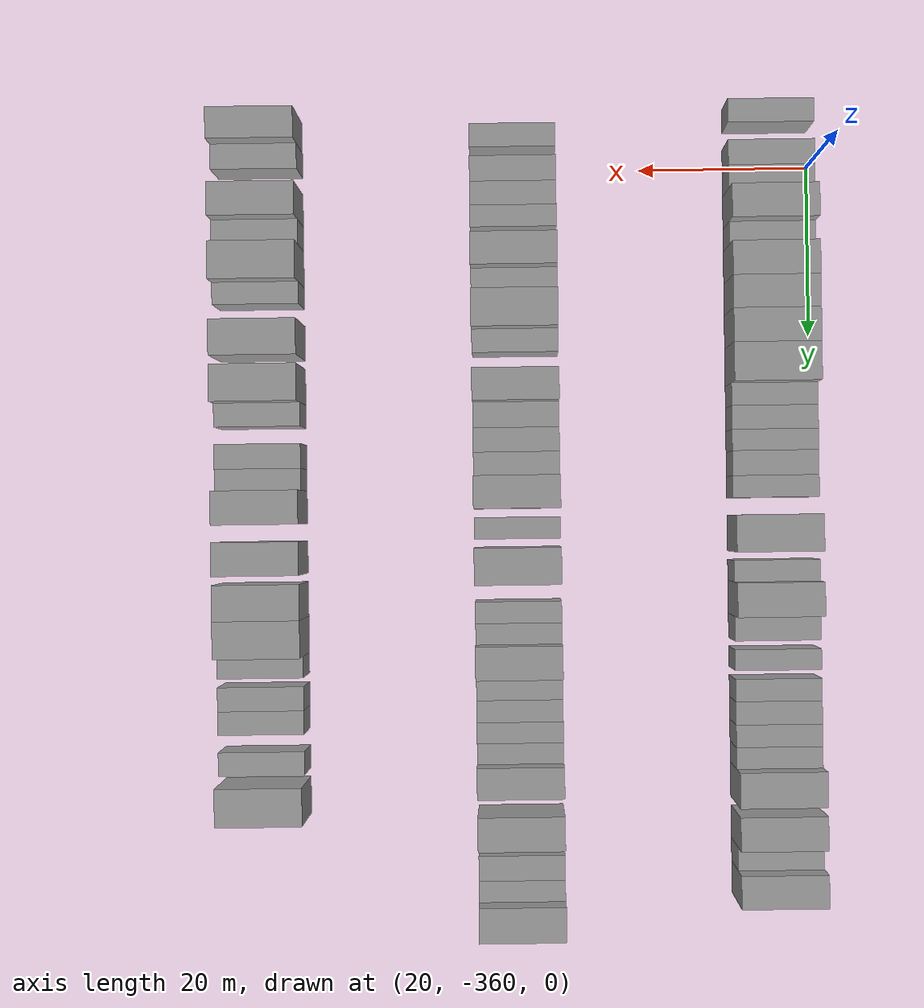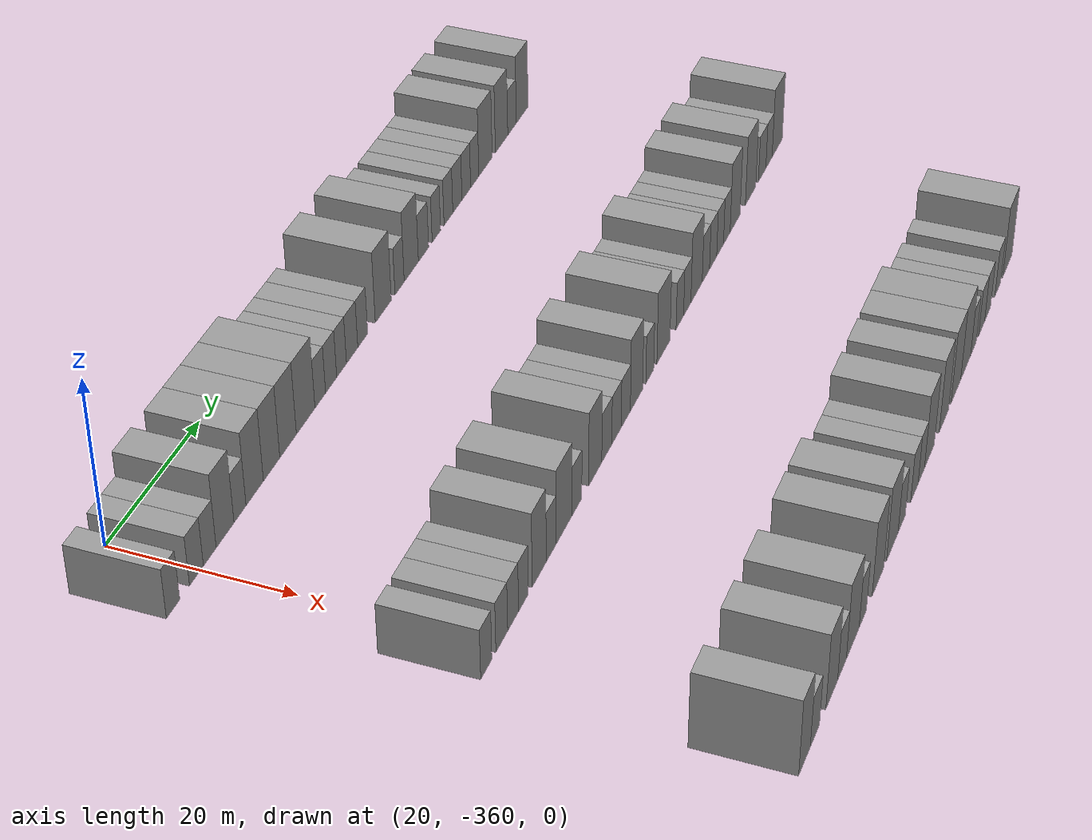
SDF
<sdf version="1.6">
 <world name="default">
  <model name="building_28">
   <static>1</static>
   <pose>25.0000 -365.6581 0 0.000000 0.000000 0.000000</pose>
   <link name="link">
    <pose>0 0 3.00 0 0 0</pose>
    <collision name="collision"><geometry><box><size>10.0000 2.7323 6.0000</size></box></geometry></collision>
    <visual name="visual">
     <cast_shadows>0</cast_shadows>
     <geometry><box><size>10.0000 2.7323 6.0000</size></box></geometry>
     <material>
      <script>
       <uri>model://grey_wall/materials/scripts</uri>
       <uri>model://grey_wall/materials/textures</uri>
       <name>vrc/grey_wall</name>
      </script>
     </material>
    </visual>
   </link>
  </model>
  <model name="building_29">
   <static>1</static>
   <pose>25.0000 -360.8342 0 0.000000 0.000000 0.000000</pose>
   <link name="link">
    <pose>0 0 3.00 0 0 0</pose>
    <collision name="collision"><geometry><box><size>10.0000 2.9154 6.0000</size></box></geometry></collision>
    <visual name="visual">
     <cast_shadows>0</cast_shadows>
     <geometry><box><size>10.0000 2.9154 6.0000</size></box></geometry>
     <material>
      <script>
       <uri>model://grey_wall/materials/scripts</uri>
       <uri>model://grey_wall/materials/textures</uri>
       <name>vrc/grey_wall</name>
      </script>
     </material>
    </visual>
   </link>
  </model>
  <model name="building_30">
   <static>1</static>
   <pose>25.0000 -358.0211 0 0.000000 0.000000 0.000000</pose>
   <link name="link">
    <pose>0 0 3.00 0 0 0</pose>
    <collision name="collision"><geometry><box><size>10.0000 2.7110 6.0000</size></box></geometry></collision>
    <visual name="visual">
     <cast_shadows>0</cast_shadows>
     <geometry><box><size>10.0000 2.7110 6.0000</size></box></geometry>
     <material>
      <script>
       <uri>model://grey_wall/materials/scripts</uri>
       <uri>model://grey_wall/materials/textures</uri>
       <name>vrc/grey_wall</name>
      </script>
     </material>
    </visual>
   </link>
  </model>
  <model name="building_31">
   <static>1</static>
   <pose>25.0000 -354.7402 0 0.000000 0.000000 0.000000</pose>
   <link name="link">
    <pose>0 0 4.50 0 0 0</pose>
    <collision name="collision"><geometry><box><size>10.0000 3.8507 9.0000</size></box></geometry></collision>
    <visual name="visual">
     <cast_shadows>0</cast_shadows>
     <geometry><box><size>10.0000 3.8507 9.0000</size></box></geometry>
     <material>
      <script>
       <uri>model://grey_wall/materials/scripts</uri>
       <uri>model://grey_wall/materials/textures</uri>
       <name>vrc/grey_wall</name>
      </script>
     </material>
    </visual>
   </link>
  </model>
  <model name="building_32">
   <static>1</static>
   <pose>25.0000 -351.4848 0 0.000000 0.000000 0.000000</pose>
   <link name="link">
    <pose>0 0 3.00 0 0 0</pose>
    <collision name="collision"><geometry><box><size>10.0000 2.6602 6.0000</size></box></geometry></collision>
    <visual name="visual">
     <cast_shadows>0</cast_shadows>
     <geometry><box><size>10.0000 2.6602 6.0000</size></box></geometry>
     <material>
      <script>
       <uri>model://grey_wall/materials/scripts</uri>
       <uri>model://grey_wall/materials/textures</uri>
       <name>vrc/grey_wall</name>
      </script>
     </material>
    </visual>
   </link>
  </model>
  <model name="building_33">
   <static>1</static>
   <pose>25.0000 -348.1988 0 0.000000 0.000000 0.000000</pose>
   <link name="link">
    <pose>0 0 4.50 0 0 0</pose>
    <collision name="collision"><geometry><box><size>10.0000 3.9120 9.0000</size></box></geometry></collision>
    <visual name="visual">
     <cast_shadows>0</cast_shadows>
     <geometry><box><size>10.0000 3.9120 9.0000</size></box></geometry>
     <material>
      <script>
       <uri>model://grey_wall/materials/scripts</uri>
       <uri>model://grey_wall/materials/textures</uri>
       <name>vrc/grey_wall</name>
      </script>
     </material>
    </visual>
   </link>
  </model>
  <model name="building_34">
   <static>1</static>
   <pose>25.0000 -344.3590 0 0.000000 0.000000 0.000000</pose>
   <link name="link">
    <pose>0 0 4.50 0 0 0</pose>
    <collision name="collision"><geometry><box><size>10.0000 3.7675 9.0000</size></box></geometry></collision>
    <visual name="visual">
     <cast_shadows>0</cast_shadows>
     <geometry><box><size>10.0000 3.7675 9.0000</size></box></geometry>
     <material>
      <script>
       <uri>model://grey_wall/materials/scripts</uri>
       <uri>model://grey_wall/materials/textures</uri>
       <name>vrc/grey_wall</name>
      </script>
     </material>
    </visual>
   </link>
  </model>
  <model name="building_35">
   <static>1</static>
   <pose>25.0000 -340.5251 0 0.000000 0.000000 0.000000</pose>
   <link name="link">
    <pose>0 0 4.50 0 0 0</pose>
    <collision name="collision"><geometry><box><size>10.0000 3.9004 9.0000</size></box></geometry></collision>
    <visual name="visual">
     <cast_shadows>0</cast_shadows>
     <geometry><box><size>10.0000 3.9004 9.0000</size></box></geometry>
     <material>
      <script>
       <uri>model://grey_wall/materials/scripts</uri>
       <uri>model://grey_wall/materials/textures</uri>
       <name>vrc/grey_wall</name>
      </script>
     </material>
    </visual>
   </link>
  </model>
  <model name="building_36">
   <static>1</static>
   <pose>25.0000 -336.3470 0 0.000000 0.000000 0.000000</pose>
   <link name="link">
    <pose>0 0 4.50 0 0 0</pose>
    <collision name="collision"><geometry><box><size>10.0000 4.4558 9.0000</size></box></geometry></collision>
    <visual name="visual">
     <cast_shadows>0</cast_shadows>
     <geometry><box><size>10.0000 4.4558 9.0000</size></box></geometry>
     <material>
      <script>
       <uri>model://grey_wall/materials/scripts</uri>
       <uri>model://grey_wall/materials/textures</uri>
       <name>vrc/grey_wall</name>
      </script>
     </material>
    </visual>
   </link>
  </model>
  <model name="building_37">
   <static>1</static>
   <pose>25.0000 -332.8146 0 0.000000 0.000000 0.000000</pose>
   <link name="link">
    <pose>0 0 3.00 0 0 0</pose>
    <collision name="collision"><geometry><box><size>10.0000 2.6089 6.0000</size></box></geometry></collision>
    <visual name="visual">
     <cast_shadows>0</cast_shadows>
     <geometry><box><size>10.0000 2.6089 6.0000</size></box></geometry>
     <material>
      <script>
       <uri>model://grey_wall/materials/scripts</uri>
       <uri>model://grey_wall/materials/textures</uri>
       <name>vrc/grey_wall</name>
      </script>
     </material>
    </visual>
   </link>
  </model>
  <model name="building_38">
   <static>1</static>
   <pose>25.0000 -330.1324 0 0.000000 0.000000 0.000000</pose>
   <link name="link">
    <pose>0 0 3.00 0 0 0</pose>
    <collision name="collision"><geometry><box><size>10.0000 2.7555 6.0000</size></box></geometry></collision>
    <visual name="visual">
     <cast_shadows>0</cast_shadows>
     <geometry><box><size>10.0000 2.7555 6.0000</size></box></geometry>
     <material>
      <script>
       <uri>model://grey_wall/materials/scripts</uri>
       <uri>model://grey_wall/materials/textures</uri>
       <name>vrc/grey_wall</name>
      </script>
     </material>
    </visual>
   </link>
  </model>
  <model name="building_39">
   <static>1</static>
   <pose>25.0000 -327.5195 0 0.000000 0.000000 0.000000</pose>
   <link name="link">
    <pose>0 0 3.00 0 0 0</pose>
    <collision name="collision"><geometry><box><size>10.0000 2.4704 6.0000</size></box></geometry></collision>
    <visual name="visual">
     <cast_shadows>0</cast_shadows>
     <geometry><box><size>10.0000 2.4704 6.0000</size></box></geometry>
     <material>
      <script>
       <uri>model://grey_wall/materials/scripts</uri>
       <uri>model://grey_wall/materials/textures</uri>
       <name>vrc/grey_wall</name>
      </script>
     </material>
    </visual>
   </link>
  </model>
  <model name="building_40">
   <static>1</static>
   <pose>25.0000 -324.8367 0 0.000000 0.000000 0.000000</pose>
   <link name="link">
    <pose>0 0 3.00 0 0 0</pose>
    <collision name="collision"><geometry><box><size>10.0000 2.8952 6.0000</size></box></geometry></collision>
    <visual name="visual">
     <cast_shadows>0</cast_shadows>
     <geometry><box><size>10.0000 2.8952 6.0000</size></box></geometry>
     <material>
      <script>
       <uri>model://grey_wall/materials/scripts</uri>
       <uri>model://grey_wall/materials/textures</uri>
       <name>vrc/grey_wall</name>
      </script>
     </material>
    </visual>
   </link>
  </model>
  <model name="building_41">
   <static>1</static>
   <pose>25.0000 -322.1112 0 0.000000 0.000000 0.000000</pose>
   <link name="link">
    <pose>0 0 3.00 0 0 0</pose>
    <collision name="collision"><geometry><box><size>10.0000 2.5558 6.0000</size></box></geometry></collision>
    <visual name="visual">
     <cast_shadows>0</cast_shadows>
     <geometry><box><size>10.0000 2.5558 6.0000</size></box></geometry>
     <material>
      <script>
       <uri>model://grey_wall/materials/scripts</uri>
       <uri>model://grey_wall/materials/textures</uri>
       <name>vrc/grey_wall</name>
      </script>
     </material>
    </visual>
   </link>
  </model>
  <model name="building_42">
   <static>1</static>
   <pose>25.0000 -316.7011 0 0.000000 0.000000 0.000000</pose>
   <link name="link">
    <pose>0 0 4.50 0 0 0</pose>
    <collision name="collision"><geometry><box><size>10.0000 4.2643 9.0000</size></box></geometry></collision>
    <visual name="visual">
     <cast_shadows>0</cast_shadows>
     <geometry><box><size>10.0000 4.2643 9.0000</size></box></geometry>
     <material>
      <script>
       <uri>model://grey_wall/materials/scripts</uri>
       <uri>model://grey_wall/materials/textures</uri>
       <name>vrc/grey_wall</name>
      </script>
     </material>
    </visual>
   </link>
  </model>
  <model name="building_43">
   <static>1</static>
   <pose>25.0000 -312.3109 0 0.000000 0.000000 0.000000</pose>
   <link name="link">
    <pose>0 0 3.00 0 0 0</pose>
    <collision name="collision"><geometry><box><size>10.0000 2.5159 6.0000</size></box></geometry></collision>
    <visual name="visual">
     <cast_shadows>0</cast_shadows>
     <geometry><box><size>10.0000 2.5159 6.0000</size></box></geometry>
     <material>
      <script>
       <uri>model://grey_wall/materials/scripts</uri>
       <uri>model://grey_wall/materials/textures</uri>
       <name>vrc/grey_wall</name>
      </script>
     </material>
    </visual>
   </link>
  </model>
  <model name="building_44">
   <static>1</static>
   <pose>25.0000 -309.0761 0 0.000000 0.000000 0.000000</pose>
   <link name="link">
    <pose>0 0 4.50 0 0 0</pose>
    <collision name="collision"><geometry><box><size>10.0000 3.9538 9.0000</size></box></geometry></collision>
    <visual name="visual">
     <cast_shadows>0</cast_shadows>
     <geometry><box><size>10.0000 3.9538 9.0000</size></box></geometry>
     <material>
      <script>
       <uri>model://grey_wall/materials/scripts</uri>
       <uri>model://grey_wall/materials/textures</uri>
       <name>vrc/grey_wall</name>
      </script>
     </material>
    </visual>
   </link>
  </model>
  <model name="building_45">
   <static>1</static>
   <pose>25.0000 -305.6563 0 0.000000 0.000000 0.000000</pose>
   <link name="link">
    <pose>0 0 3.00 0 0 0</pose>
    <collision name="collision"><geometry><box><size>10.0000 2.8857 6.0000</size></box></geometry></collision>
    <visual name="visual">
     <cast_shadows>0</cast_shadows>
     <geometry><box><size>10.0000 2.8857 6.0000</size></box></geometry>
     <material>
      <script>
       <uri>model://grey_wall/materials/scripts</uri>
       <uri>model://grey_wall/materials/textures</uri>
       <name>vrc/grey_wall</name>
      </script>
     </material>
    </visual>
   </link>
  </model>
  <model name="building_46">
   <static>1</static>
   <pose>25.0000 -302.0009 0 0.000000 0.000000 0.000000</pose>
   <link name="link">
    <pose>0 0 3.00 0 0 0</pose>
    <collision name="collision"><geometry><box><size>10.0000 2.4250 6.0000</size></box></geometry></collision>
    <visual name="visual">
     <cast_shadows>0</cast_shadows>
     <geometry><box><size>10.0000 2.4250 6.0000</size></box></geometry>
     <material>
      <script>
       <uri>model://grey_wall/materials/scripts</uri>
       <uri>model://grey_wall/materials/textures</uri>
       <name>vrc/grey_wall</name>
      </script>
     </material>
    </visual>
   </link>
  </model>
  <model name="building_47">
   <static>1</static>
   <pose>25.0000 -298.4936 0 0.000000 0.000000 0.000000</pose>
   <link name="link">
    <pose>0 0 3.00 0 0 0</pose>
    <collision name="collision"><geometry><box><size>10.0000 2.5896 6.0000</size></box></geometry></collision>
    <visual name="visual">
     <cast_shadows>0</cast_shadows>
     <geometry><box><size>10.0000 2.5896 6.0000</size></box></geometry>
     <material>
      <script>
       <uri>model://grey_wall/materials/scripts</uri>
       <uri>model://grey_wall/materials/textures</uri>
       <name>vrc/grey_wall</name>
      </script>
     </material>
    </visual>
   </link>
  </model>
  <model name="building_48">
   <static>1</static>
   <pose>25.0000 -295.8456 0 0.000000 0.000000 0.000000</pose>
   <link name="link">
    <pose>0 0 3.00 0 0 0</pose>
    <collision name="collision"><geometry><box><size>10.0000 2.7064 6.0000</size></box></geometry></collision>
    <visual name="visual">
     <cast_shadows>0</cast_shadows>
     <geometry><box><size>10.0000 2.7064 6.0000</size></box></geometry>
     <material>
      <script>
       <uri>model://grey_wall/materials/scripts</uri>
       <uri>model://grey_wall/materials/textures</uri>
       <name>vrc/grey_wall</name>
      </script>
     </material>
    </visual>
   </link>
  </model>
  <model name="building_49">
   <static>1</static>
   <pose>25.0000 -293.1895 0 0.000000 0.000000 0.000000</pose>
   <link name="link">
    <pose>0 0 3.00 0 0 0</pose>
    <collision name="collision"><geometry><box><size>10.0000 2.6058 6.0000</size></box></geometry></collision>
    <visual name="visual">
     <cast_shadows>0</cast_shadows>
     <geometry><box><size>10.0000 2.6058 6.0000</size></box></geometry>
     <material>
      <script>
       <uri>model://grey_wall/materials/scripts</uri>
       <uri>model://grey_wall/materials/textures</uri>
       <name>vrc/grey_wall</name>
      </script>
     </material>
    </visual>
   </link>
  </model>
  <model name="building_50">
   <static>1</static>
   <pose>25.0000 -290.6350 0 0.000000 0.000000 0.000000</pose>
   <link name="link">
    <pose>0 0 3.00 0 0 0</pose>
    <collision name="collision"><geometry><box><size>10.0000 2.5033 6.0000</size></box></geometry></collision>
    <visual name="visual">
     <cast_shadows>0</cast_shadows>
     <geometry><box><size>10.0000 2.5033 6.0000</size></box></geometry>
     <material>
      <script>
       <uri>model://grey_wall/materials/scripts</uri>
       <uri>model://grey_wall/materials/textures</uri>
       <name>vrc/grey_wall</name>
      </script>
     </material>
    </visual>
   </link>
  </model>
  <model name="building_51">
   <static>1</static>
   <pose>25.0000 -287.3302 0 0.000000 0.000000 0.000000</pose>
   <link name="link">
    <pose>0 0 4.50 0 0 0</pose>
    <collision name="collision"><geometry><box><size>10.0000 4.1063 9.0000</size></box></geometry></collision>
    <visual name="visual">
     <cast_shadows>0</cast_shadows>
     <geometry><box><size>10.0000 4.1063 9.0000</size></box></geometry>
     <material>
      <script>
       <uri>model://grey_wall/materials/scripts</uri>
       <uri>model://grey_wall/materials/textures</uri>
       <name>vrc/grey_wall</name>
      </script>
     </material>
    </visual>
   </link>
  </model>
  <model name="building_52">
   <static>1</static>
   <pose>25.0000 -282.3142 0 0.000000 0.000000 0.000000</pose>
   <link name="link">
    <pose>0 0 4.50 0 0 0</pose>
    <collision name="collision"><geometry><box><size>10.0000 3.9257 9.0000</size></box></geometry></collision>
    <visual name="visual">
     <cast_shadows>0</cast_shadows>
     <geometry><box><size>10.0000 3.9257 9.0000</size></box></geometry>
     <material>
      <script>
       <uri>model://grey_wall/materials/scripts</uri>
       <uri>model://grey_wall/materials/textures</uri>
       <name>vrc/grey_wall</name>
      </script>
     </material>
    </visual>
   </link>
  </model>
  <model name="building_53">
   <static>1</static>
   <pose>25.0000 -278.9817 0 0.000000 0.000000 0.000000</pose>
   <link name="link">
    <pose>0 0 3.00 0 0 0</pose>
    <collision name="collision"><geometry><box><size>10.0000 2.7393 6.0000</size></box></geometry></collision>
    <visual name="visual">
     <cast_shadows>0</cast_shadows>
     <geometry><box><size>10.0000 2.7393 6.0000</size></box></geometry>
     <material>
      <script>
       <uri>model://grey_wall/materials/scripts</uri>
       <uri>model://grey_wall/materials/textures</uri>
       <name>vrc/grey_wall</name>
      </script>
     </material>
    </visual>
   </link>
  </model>
  <model name="building_54">
   <static>1</static>
   <pose>25.0000 -275.6976 0 0.000000 0.000000 0.000000</pose>
   <link name="link">
    <pose>0 0 4.50 0 0 0</pose>
    <collision name="collision"><geometry><box><size>10.0000 3.8290 9.0000</size></box></geometry></collision>
    <visual name="visual">
     <cast_shadows>0</cast_shadows>
     <geometry><box><size>10.0000 3.8290 9.0000</size></box></geometry>
     <material>
      <script>
       <uri>model://grey_wall/materials/scripts</uri>
       <uri>model://grey_wall/materials/textures</uri>
       <name>vrc/grey_wall</name>
      </script>
     </material>
    </visual>
   </link>
  </model>
  <model name="building_264">
   <static>1</static>
   <pose>55.0000 -363.2098 0 0.000000 0.000000 0.000000</pose>
   <link name="link">
    <pose>0 0 3.00 0 0 0</pose>
    <collision name="collision"><geometry><box><size>10.0000 2.7198 6.0000</size></box></geometry></collision>
    <visual name="visual">
     <cast_shadows>0</cast_shadows>
     <geometry><box><size>10.0000 2.7198 6.0000</size></box></geometry>
     <material>
      <script>
       <uri>model://grey_wall/materials/scripts</uri>
       <uri>model://grey_wall/materials/textures</uri>
       <name>vrc/grey_wall</name>
      </script>
     </material>
    </visual>
   </link>
  </model>
  <model name="building_265">
   <static>1</static>
   <pose>55.0000 -359.3690 0 0.000000 0.000000 0.000000</pose>
   <link name="link">
    <pose>0 0 3.00 0 0 0</pose>
    <collision name="collision"><geometry><box><size>10.0000 2.9618 6.0000</size></box></geometry></collision>
    <visual name="visual">
     <cast_shadows>0</cast_shadows>
     <geometry><box><size>10.0000 2.9618 6.0000</size></box></geometry>
     <material>
      <script>
       <uri>model://grey_wall/materials/scripts</uri>
       <uri>model://grey_wall/materials/textures</uri>
       <name>vrc/grey_wall</name>
      </script>
     </material>
    </visual>
   </link>
  </model>
  <model name="building_266">
   <static>1</static>
   <pose>55.0000 -356.5039 0 0.000000 0.000000 0.000000</pose>
   <link name="link">
    <pose>0 0 3.00 0 0 0</pose>
    <collision name="collision"><geometry><box><size>10.0000 2.7684 6.0000</size></box></geometry></collision>
    <visual name="visual">
     <cast_shadows>0</cast_shadows>
     <geometry><box><size>10.0000 2.7684 6.0000</size></box></geometry>
     <material>
      <script>
       <uri>model://grey_wall/materials/scripts</uri>
       <uri>model://grey_wall/materials/textures</uri>
       <name>vrc/grey_wall</name>
      </script>
     </material>
    </visual>
   </link>
  </model>
  <model name="building_267">
   <static>1</static>
   <pose>55.0000 -353.8537 0 0.000000 0.000000 0.000000</pose>
   <link name="link">
    <pose>0 0 3.00 0 0 0</pose>
    <collision name="collision"><geometry><box><size>10.0000 2.5318 6.0000</size></box></geometry></collision>
    <visual name="visual">
     <cast_shadows>0</cast_shadows>
     <geometry><box><size>10.0000 2.5318 6.0000</size></box></geometry>
     <material>
      <script>
       <uri>model://grey_wall/materials/scripts</uri>
       <uri>model://grey_wall/materials/textures</uri>
       <name>vrc/grey_wall</name>
      </script>
     </material>
    </visual>
   </link>
  </model>
  <model name="building_268">
   <static>1</static>
   <pose>55.0000 -349.7121 0 0.000000 0.000000 0.000000</pose>
   <link name="link">
    <pose>0 0 4.50 0 0 0</pose>
    <collision name="collision"><geometry><box><size>10.0000 3.7514 9.0000</size></box></geometry></collision>
    <visual name="visual">
     <cast_shadows>0</cast_shadows>
     <geometry><box><size>10.0000 3.7514 9.0000</size></box></geometry>
     <material>
      <script>
       <uri>model://grey_wall/materials/scripts</uri>
       <uri>model://grey_wall/materials/textures</uri>
       <name>vrc/grey_wall</name>
      </script>
     </material>
    </visual>
   </link>
  </model>
  <model name="building_269">
   <static>1</static>
   <pose>55.0000 -346.4934 0 0.000000 0.000000 0.000000</pose>
   <link name="link">
    <pose>0 0 3.00 0 0 0</pose>
    <collision name="collision"><geometry><box><size>10.0000 2.6861 6.0000</size></box></geometry></collision>
    <visual name="visual">
     <cast_shadows>0</cast_shadows>
     <geometry><box><size>10.0000 2.6861 6.0000</size></box></geometry>
     <material>
      <script>
       <uri>model://grey_wall/materials/scripts</uri>
       <uri>model://grey_wall/materials/textures</uri>
       <name>vrc/grey_wall</name>
      </script>
     </material>
    </visual>
   </link>
  </model>
  <model name="building_270">
   <static>1</static>
   <pose>55.0000 -342.9607 0 0.000000 0.000000 0.000000</pose>
   <link name="link">
    <pose>0 0 4.50 0 0 0</pose>
    <collision name="collision"><geometry><box><size>10.0000 4.3791 9.0000</size></box></geometry></collision>
    <visual name="visual">
     <cast_shadows>0</cast_shadows>
     <geometry><box><size>10.0000 4.3791 9.0000</size></box></geometry>
     <material>
      <script>
       <uri>model://grey_wall/materials/scripts</uri>
       <uri>model://grey_wall/materials/textures</uri>
       <name>vrc/grey_wall</name>
      </script>
     </material>
    </visual>
   </link>
  </model>
  <model name="building_271">
   <static>1</static>
   <pose>55.0000 -339.4111 0 0.000000 0.000000 0.000000</pose>
   <link name="link">
    <pose>0 0 3.00 0 0 0</pose>
    <collision name="collision"><geometry><box><size>10.0000 2.7202 6.0000</size></box></geometry></collision>
    <visual name="visual">
     <cast_shadows>0</cast_shadows>
     <geometry><box><size>10.0000 2.7202 6.0000</size></box></geometry>
     <material>
      <script>
       <uri>model://grey_wall/materials/scripts</uri>
       <uri>model://grey_wall/materials/textures</uri>
       <name>vrc/grey_wall</name>
      </script>
     </material>
    </visual>
   </link>
  </model>
  <model name="building_272">
   <static>1</static>
   <pose>55.0000 -334.1832 0 0.000000 0.000000 0.000000</pose>
   <link name="link">
    <pose>0 0 4.50 0 0 0</pose>
    <collision name="collision"><geometry><box><size>10.0000 3.7355 9.0000</size></box></geometry></collision>
    <visual name="visual">
     <cast_shadows>0</cast_shadows>
     <geometry><box><size>10.0000 3.7355 9.0000</size></box></geometry>
     <material>
      <script>
       <uri>model://grey_wall/materials/scripts</uri>
       <uri>model://grey_wall/materials/textures</uri>
       <name>vrc/grey_wall</name>
      </script>
     </material>
    </visual>
   </link>
  </model>
  <model name="building_273">
   <static>1</static>
   <pose>55.0000 -330.8251 0 0.000000 0.000000 0.000000</pose>
   <link name="link">
    <pose>0 0 3.00 0 0 0</pose>
    <collision name="collision"><geometry><box><size>10.0000 2.9807 6.0000</size></box></geometry></collision>
    <visual name="visual">
     <cast_shadows>0</cast_shadows>
     <geometry><box><size>10.0000 2.9807 6.0000</size></box></geometry>
     <material>
      <script>
       <uri>model://grey_wall/materials/scripts</uri>
       <uri>model://grey_wall/materials/textures</uri>
       <name>vrc/grey_wall</name>
      </script>
     </material>
    </visual>
   </link>
  </model>
  <model name="building_274">
   <static>1</static>
   <pose>55.0000 -327.9241 0 0.000000 0.000000 0.000000</pose>
   <link name="link">
    <pose>0 0 3.00 0 0 0</pose>
    <collision name="collision"><geometry><box><size>10.0000 2.8211 6.0000</size></box></geometry></collision>
    <visual name="visual">
     <cast_shadows>0</cast_shadows>
     <geometry><box><size>10.0000 2.8211 6.0000</size></box></geometry>
     <material>
      <script>
       <uri>model://grey_wall/materials/scripts</uri>
       <uri>model://grey_wall/materials/textures</uri>
       <name>vrc/grey_wall</name>
      </script>
     </material>
    </visual>
   </link>
  </model>
  <model name="building_275">
   <static>1</static>
   <pose>55.0000 -325.1282 0 0.000000 0.000000 0.000000</pose>
   <link name="link">
    <pose>0 0 3.00 0 0 0</pose>
    <collision name="collision"><geometry><box><size>10.0000 2.7707 6.0000</size></box></geometry></collision>
    <visual name="visual">
     <cast_shadows>0</cast_shadows>
     <geometry><box><size>10.0000 2.7707 6.0000</size></box></geometry>
     <material>
      <script>
       <uri>model://grey_wall/materials/scripts</uri>
       <uri>model://grey_wall/materials/textures</uri>
       <name>vrc/grey_wall</name>
      </script>
     </material>
    </visual>
   </link>
  </model>
  <model name="building_276">
   <static>1</static>
   <pose>55.0000 -321.8390 0 0.000000 0.000000 0.000000</pose>
   <link name="link">
    <pose>0 0 4.50 0 0 0</pose>
    <collision name="collision"><geometry><box><size>10.0000 3.8078 9.0000</size></box></geometry></collision>
    <visual name="visual">
     <cast_shadows>0</cast_shadows>
     <geometry><box><size>10.0000 3.8078 9.0000</size></box></geometry>
     <material>
      <script>
       <uri>model://grey_wall/materials/scripts</uri>
       <uri>model://grey_wall/materials/textures</uri>
       <name>vrc/grey_wall</name>
      </script>
     </material>
    </visual>
   </link>
  </model>
  <model name="building_277">
   <static>1</static>
   <pose>55.0000 -317.6791 0 0.000000 0.000000 0.000000</pose>
   <link name="link">
    <pose>0 0 3.00 0 0 0</pose>
    <collision name="collision"><geometry><box><size>10.0000 2.5119 6.0000</size></box></geometry></collision>
    <visual name="visual">
     <cast_shadows>0</cast_shadows>
     <geometry><box><size>10.0000 2.5119 6.0000</size></box></geometry>
     <material>
      <script>
       <uri>model://grey_wall/materials/scripts</uri>
       <uri>model://grey_wall/materials/textures</uri>
       <name>vrc/grey_wall</name>
      </script>
     </material>
    </visual>
   </link>
  </model>
  <model name="building_278">
   <static>1</static>
   <pose>55.0000 -313.2943 0 0.000000 0.000000 0.000000</pose>
   <link name="link">
    <pose>0 0 4.50 0 0 0</pose>
    <collision name="collision"><geometry><box><size>10.0000 4.2576 9.0000</size></box></geometry></collision>
    <visual name="visual">
     <cast_shadows>0</cast_shadows>
     <geometry><box><size>10.0000 4.2576 9.0000</size></box></geometry>
     <material>
      <script>
       <uri>model://grey_wall/materials/scripts</uri>
       <uri>model://grey_wall/materials/textures</uri>
       <name>vrc/grey_wall</name>
      </script>
     </material>
    </visual>
   </link>
  </model>
  <model name="building_279">
   <static>1</static>
   <pose>55.0000 -307.9048 0 0.000000 0.000000 0.000000</pose>
   <link name="link">
    <pose>0 0 3.00 0 0 0</pose>
    <collision name="collision"><geometry><box><size>10.0000 2.5215 6.0000</size></box></geometry></collision>
    <visual name="visual">
     <cast_shadows>0</cast_shadows>
     <geometry><box><size>10.0000 2.5215 6.0000</size></box></geometry>
     <material>
      <script>
       <uri>model://grey_wall/materials/scripts</uri>
       <uri>model://grey_wall/materials/textures</uri>
       <name>vrc/grey_wall</name>
      </script>
     </material>
    </visual>
   </link>
  </model>
  <model name="building_280">
   <static>1</static>
   <pose>55.0000 -305.4098 0 0.000000 0.000000 0.000000</pose>
   <link name="link">
    <pose>0 0 3.00 0 0 0</pose>
    <collision name="collision"><geometry><box><size>10.0000 2.4685 6.0000</size></box></geometry></collision>
    <visual name="visual">
     <cast_shadows>0</cast_shadows>
     <geometry><box><size>10.0000 2.4685 6.0000</size></box></geometry>
     <material>
      <script>
       <uri>model://grey_wall/materials/scripts</uri>
       <uri>model://grey_wall/materials/textures</uri>
       <name>vrc/grey_wall</name>
      </script>
     </material>
    </visual>
   </link>
  </model>
  <model name="building_281">
   <static>1</static>
   <pose>55.0000 -302.2275 0 0.000000 0.000000 0.000000</pose>
   <link name="link">
    <pose>0 0 4.50 0 0 0</pose>
    <collision name="collision"><geometry><box><size>10.0000 3.8961 9.0000</size></box></geometry></collision>
    <visual name="visual">
     <cast_shadows>0</cast_shadows>
     <geometry><box><size>10.0000 3.8961 9.0000</size></box></geometry>
     <material>
      <script>
       <uri>model://grey_wall/materials/scripts</uri>
       <uri>model://grey_wall/materials/textures</uri>
       <name>vrc/grey_wall</name>
      </script>
     </material>
    </visual>
   </link>
  </model>
  <model name="building_282">
   <static>1</static>
   <pose>55.0000 -299.0048 0 0.000000 0.000000 0.000000</pose>
   <link name="link">
    <pose>0 0 3.00 0 0 0</pose>
    <collision name="collision"><geometry><box><size>10.0000 2.5494 6.0000</size></box></geometry></collision>
    <visual name="visual">
     <cast_shadows>0</cast_shadows>
     <geometry><box><size>10.0000 2.5494 6.0000</size></box></geometry>
     <material>
      <script>
       <uri>model://grey_wall/materials/scripts</uri>
       <uri>model://grey_wall/materials/textures</uri>
       <name>vrc/grey_wall</name>
      </script>
     </material>
    </visual>
   </link>
  </model>
  <model name="building_283">
   <static>1</static>
   <pose>55.0000 -296.4516 0 0.000000 0.000000 0.000000</pose>
   <link name="link">
    <pose>0 0 3.00 0 0 0</pose>
    <collision name="collision"><geometry><box><size>10.0000 2.5568 6.0000</size></box></geometry></collision>
    <visual name="visual">
     <cast_shadows>0</cast_shadows>
     <geometry><box><size>10.0000 2.5568 6.0000</size></box></geometry>
     <material>
      <script>
       <uri>model://grey_wall/materials/scripts</uri>
       <uri>model://grey_wall/materials/textures</uri>
       <name>vrc/grey_wall</name>
      </script>
     </material>
    </visual>
   </link>
  </model>
  <model name="building_284">
   <static>1</static>
   <pose>55.0000 -293.9595 0 0.000000 0.000000 0.000000</pose>
   <link name="link">
    <pose>0 0 3.00 0 0 0</pose>
    <collision name="collision"><geometry><box><size>10.0000 2.4274 6.0000</size></box></geometry></collision>
    <visual name="visual">
     <cast_shadows>0</cast_shadows>
     <geometry><box><size>10.0000 2.4274 6.0000</size></box></geometry>
     <material>
      <script>
       <uri>model://grey_wall/materials/scripts</uri>
       <uri>model://grey_wall/materials/textures</uri>
       <name>vrc/grey_wall</name>
      </script>
     </material>
    </visual>
   </link>
  </model>
  <model name="building_285">
   <static>1</static>
   <pose>55.0000 -291.5393 0 0.000000 0.000000 0.000000</pose>
   <link name="link">
    <pose>0 0 3.00 0 0 0</pose>
    <collision name="collision"><geometry><box><size>10.0000 2.4131 6.0000</size></box></geometry></collision>
    <visual name="visual">
     <cast_shadows>0</cast_shadows>
     <geometry><box><size>10.0000 2.4131 6.0000</size></box></geometry>
     <material>
      <script>
       <uri>model://grey_wall/materials/scripts</uri>
       <uri>model://grey_wall/materials/textures</uri>
       <name>vrc/grey_wall</name>
      </script>
     </material>
    </visual>
   </link>
  </model>
  <model name="building_286">
   <static>1</static>
   <pose>55.0000 -288.5036 0 0.000000 0.000000 0.000000</pose>
   <link name="link">
    <pose>0 0 4.50 0 0 0</pose>
    <collision name="collision"><geometry><box><size>10.0000 3.6582 9.0000</size></box></geometry></collision>
    <visual name="visual">
     <cast_shadows>0</cast_shadows>
     <geometry><box><size>10.0000 3.6582 9.0000</size></box></geometry>
     <material>
      <script>
       <uri>model://grey_wall/materials/scripts</uri>
       <uri>model://grey_wall/materials/textures</uri>
       <name>vrc/grey_wall</name>
      </script>
     </material>
    </visual>
   </link>
  </model>
  <model name="building_287">
   <static>1</static>
   <pose>55.0000 -282.6972 0 0.000000 0.000000 0.000000</pose>
   <link name="link">
    <pose>0 0 4.50 0 0 0</pose>
    <collision name="collision"><geometry><box><size>10.0000 3.9546 9.0000</size></box></geometry></collision>
    <visual name="visual">
     <cast_shadows>0</cast_shadows>
     <geometry><box><size>10.0000 3.9546 9.0000</size></box></geometry>
     <material>
      <script>
       <uri>model://grey_wall/materials/scripts</uri>
       <uri>model://grey_wall/materials/textures</uri>
       <name>vrc/grey_wall</name>
      </script>
     </material>
    </visual>
   </link>
  </model>
  <model name="building_288">
   <static>1</static>
   <pose>55.0000 -278.2724 0 0.000000 0.000000 0.000000</pose>
   <link name="link">
    <pose>0 0 3.00 0 0 0</pose>
    <collision name="collision"><geometry><box><size>10.0000 2.8952 6.0000</size></box></geometry></collision>
    <visual name="visual">
     <cast_shadows>0</cast_shadows>
     <geometry><box><size>10.0000 2.8952 6.0000</size></box></geometry>
     <material>
      <script>
       <uri>model://grey_wall/materials/scripts</uri>
       <uri>model://grey_wall/materials/textures</uri>
       <name>vrc/grey_wall</name>
      </script>
     </material>
    </visual>
   </link>
  </model>
  <model name="building_289">
   <static>1</static>
   <pose>55.0000 -275.5951 0 0.000000 0.000000 0.000000</pose>
   <link name="link">
    <pose>0 0 3.00 0 0 0</pose>
    <collision name="collision"><geometry><box><size>10.0000 2.4593 6.0000</size></box></geometry></collision>
    <visual name="visual">
     <cast_shadows>0</cast_shadows>
     <geometry><box><size>10.0000 2.4593 6.0000</size></box></geometry>
     <material>
      <script>
       <uri>model://grey_wall/materials/scripts</uri>
       <uri>model://grey_wall/materials/textures</uri>
       <name>vrc/grey_wall</name>
      </script>
     </material>
    </visual>
   </link>
  </model>
  <model name="building_290">
   <static>1</static>
   <pose>55.0000 -272.3375 0 0.000000 0.000000 0.000000</pose>
   <link name="link">
    <pose>0 0 4.50 0 0 0</pose>
    <collision name="collision"><geometry><box><size>10.0000 4.0560 9.0000</size></box></geometry></collision>
    <visual name="visual">
     <cast_shadows>0</cast_shadows>
     <geometry><box><size>10.0000 4.0560 9.0000</size></box></geometry>
     <material>
      <script>
       <uri>model://grey_wall/materials/scripts</uri>
       <uri>model://grey_wall/materials/textures</uri>
       <name>vrc/grey_wall</name>
      </script>
     </material>
    </visual>
   </link>
  </model>
  <model name="building_504">
   <static>1</static>
   <pose>85.0000 -364.4037 0 0.000000 0.000000 0.000000</pose>
   <link name="link">
    <pose>0 0 4.50 0 0 0</pose>
    <collision name="collision"><geometry><box><size>10.0000 3.6005 9.0000</size></box></geometry></collision>
    <visual name="visual">
     <cast_shadows>0</cast_shadows>
     <geometry><box><size>10.0000 3.6005 9.0000</size></box></geometry>
     <material>
      <script>
       <uri>model://grey_wall/materials/scripts</uri>
       <uri>model://grey_wall/materials/textures</uri>
       <name>vrc/grey_wall</name>
      </script>
     </material>
    </visual>
   </link>
  </model>
  <model name="building_505">
   <static>1</static>
   <pose>85.0000 -361.1420 0 0.000000 0.000000 0.000000</pose>
   <link name="link">
    <pose>0 0 3.00 0 0 0</pose>
    <collision name="collision"><geometry><box><size>10.0000 2.9229 6.0000</size></box></geometry></collision>
    <visual name="visual">
     <cast_shadows>0</cast_shadows>
     <geometry><box><size>10.0000 2.9229 6.0000</size></box></geometry>
     <material>
      <script>
       <uri>model://grey_wall/materials/scripts</uri>
       <uri>model://grey_wall/materials/textures</uri>
       <name>vrc/grey_wall</name>
      </script>
     </material>
    </visual>
   </link>
  </model>
  <model name="building_506">
   <static>1</static>
   <pose>85.0000 -355.7552 0 0.000000 0.000000 0.000000</pose>
   <link name="link">
    <pose>0 0 4.50 0 0 0</pose>
    <collision name="collision"><geometry><box><size>10.0000 3.8507 9.0000</size></box></geometry></collision>
    <visual name="visual">
     <cast_shadows>0</cast_shadows>
     <geometry><box><size>10.0000 3.8507 9.0000</size></box></geometry>
     <material>
      <script>
       <uri>model://grey_wall/materials/scripts</uri>
       <uri>model://grey_wall/materials/textures</uri>
       <name>vrc/grey_wall</name>
      </script>
     </material>
    </visual>
   </link>
  </model>
  <model name="building_507">
   <static>1</static>
   <pose>85.0000 -352.3837 0 0.000000 0.000000 0.000000</pose>
   <link name="link">
    <pose>0 0 3.00 0 0 0</pose>
    <collision name="collision"><geometry><box><size>10.0000 2.8925 6.0000</size></box></geometry></collision>
    <visual name="visual">
     <cast_shadows>0</cast_shadows>
     <geometry><box><size>10.0000 2.8925 6.0000</size></box></geometry>
     <material>
      <script>
       <uri>model://grey_wall/materials/scripts</uri>
       <uri>model://grey_wall/materials/textures</uri>
       <name>vrc/grey_wall</name>
      </script>
     </material>
    </visual>
   </link>
  </model>
  <model name="building_508">
   <static>1</static>
   <pose>85.0000 -348.7618 0 0.000000 0.000000 0.000000</pose>
   <link name="link">
    <pose>0 0 4.50 0 0 0</pose>
    <collision name="collision"><geometry><box><size>10.0000 4.3512 9.0000</size></box></geometry></collision>
    <visual name="visual">
     <cast_shadows>0</cast_shadows>
     <geometry><box><size>10.0000 4.3512 9.0000</size></box></geometry>
     <material>
      <script>
       <uri>model://grey_wall/materials/scripts</uri>
       <uri>model://grey_wall/materials/textures</uri>
       <name>vrc/grey_wall</name>
      </script>
     </material>
    </visual>
   </link>
  </model>
  <model name="building_509">
   <static>1</static>
   <pose>85.0000 -345.3076 0 0.000000 0.000000 0.000000</pose>
   <link name="link">
    <pose>0 0 3.00 0 0 0</pose>
    <collision name="collision"><geometry><box><size>10.0000 2.5572 6.0000</size></box></geometry></collision>
    <visual name="visual">
     <cast_shadows>0</cast_shadows>
     <geometry><box><size>10.0000 2.5572 6.0000</size></box></geometry>
     <material>
      <script>
       <uri>model://grey_wall/materials/scripts</uri>
       <uri>model://grey_wall/materials/textures</uri>
       <name>vrc/grey_wall</name>
      </script>
     </material>
    </visual>
   </link>
  </model>
  <model name="building_510">
   <static>1</static>
   <pose>85.0000 -339.9564 0 0.000000 0.000000 0.000000</pose>
   <link name="link">
    <pose>0 0 4.50 0 0 0</pose>
    <collision name="collision"><geometry><box><size>10.0000 4.1452 9.0000</size></box></geometry></collision>
    <visual name="visual">
     <cast_shadows>0</cast_shadows>
     <geometry><box><size>10.0000 4.1452 9.0000</size></box></geometry>
     <material>
      <script>
       <uri>model://grey_wall/materials/scripts</uri>
       <uri>model://grey_wall/materials/textures</uri>
       <name>vrc/grey_wall</name>
      </script>
     </material>
    </visual>
   </link>
  </model>
  <model name="building_511">
   <static>1</static>
   <pose>85.0000 -334.7407 0 0.000000 0.000000 0.000000</pose>
   <link name="link">
    <pose>0 0 4.50 0 0 0</pose>
    <collision name="collision"><geometry><box><size>10.0000 4.2862 9.0000</size></box></geometry></collision>
    <visual name="visual">
     <cast_shadows>0</cast_shadows>
     <geometry><box><size>10.0000 4.2862 9.0000</size></box></geometry>
     <material>
      <script>
       <uri>model://grey_wall/materials/scripts</uri>
       <uri>model://grey_wall/materials/textures</uri>
       <name>vrc/grey_wall</name>
      </script>
     </material>
    </visual>
   </link>
  </model>
  <model name="building_512">
   <static>1</static>
   <pose>85.0000 -331.2139 0 0.000000 0.000000 0.000000</pose>
   <link name="link">
    <pose>0 0 3.00 0 0 0</pose>
    <collision name="collision"><geometry><box><size>10.0000 2.7674 6.0000</size></box></geometry></collision>
    <visual name="visual">
     <cast_shadows>0</cast_shadows>
     <geometry><box><size>10.0000 2.7674 6.0000</size></box></geometry>
     <material>
      <script>
       <uri>model://grey_wall/materials/scripts</uri>
       <uri>model://grey_wall/materials/textures</uri>
       <name>vrc/grey_wall</name>
      </script>
     </material>
    </visual>
   </link>
  </model>
  <model name="building_513">
   <static>1</static>
   <pose>85.0000 -326.3889 0 0.000000 0.000000 0.000000</pose>
   <link name="link">
    <pose>0 0 3.00 0 0 0</pose>
    <collision name="collision"><geometry><box><size>10.0000 2.8826 6.0000</size></box></geometry></collision>
    <visual name="visual">
     <cast_shadows>0</cast_shadows>
     <geometry><box><size>10.0000 2.8826 6.0000</size></box></geometry>
     <material>
      <script>
       <uri>model://grey_wall/materials/scripts</uri>
       <uri>model://grey_wall/materials/textures</uri>
       <name>vrc/grey_wall</name>
      </script>
     </material>
    </visual>
   </link>
  </model>
  <model name="building_514">
   <static>1</static>
   <pose>85.0000 -323.6732 0 0.000000 0.000000 0.000000</pose>
   <link name="link">
    <pose>0 0 3.00 0 0 0</pose>
    <collision name="collision"><geometry><box><size>10.0000 2.5488 6.0000</size></box></geometry></collision>
    <visual name="visual">
     <cast_shadows>0</cast_shadows>
     <geometry><box><size>10.0000 2.5488 6.0000</size></box></geometry>
     <material>
      <script>
       <uri>model://grey_wall/materials/scripts</uri>
       <uri>model://grey_wall/materials/textures</uri>
       <name>vrc/grey_wall</name>
      </script>
     </material>
    </visual>
   </link>
  </model>
  <model name="building_515">
   <static>1</static>
   <pose>85.0000 -320.4352 0 0.000000 0.000000 0.000000</pose>
   <link name="link">
    <pose>0 0 4.50 0 0 0</pose>
    <collision name="collision"><geometry><box><size>10.0000 3.9270 9.0000</size></box></geometry></collision>
    <visual name="visual">
     <cast_shadows>0</cast_shadows>
     <geometry><box><size>10.0000 3.9270 9.0000</size></box></geometry>
     <material>
      <script>
       <uri>model://grey_wall/materials/scripts</uri>
       <uri>model://grey_wall/materials/textures</uri>
       <name>vrc/grey_wall</name>
      </script>
     </material>
    </visual>
   </link>
  </model>
  <model name="building_516">
   <static>1</static>
   <pose>85.0000 -314.5349 0 0.000000 0.000000 0.000000</pose>
   <link name="link">
    <pose>0 0 4.50 0 0 0</pose>
    <collision name="collision"><geometry><box><size>10.0000 3.8736 9.0000</size></box></geometry></collision>
    <visual name="visual">
     <cast_shadows>0</cast_shadows>
     <geometry><box><size>10.0000 3.8736 9.0000</size></box></geometry>
     <material>
      <script>
       <uri>model://grey_wall/materials/scripts</uri>
       <uri>model://grey_wall/materials/textures</uri>
       <name>vrc/grey_wall</name>
      </script>
     </material>
    </visual>
   </link>
  </model>
  <model name="building_517">
   <static>1</static>
   <pose>85.0000 -309.5278 0 0.000000 0.000000 0.000000</pose>
   <link name="link">
    <pose>0 0 4.50 0 0 0</pose>
    <collision name="collision"><geometry><box><size>10.0000 4.1407 9.0000</size></box></geometry></collision>
    <visual name="visual">
     <cast_shadows>0</cast_shadows>
     <geometry><box><size>10.0000 4.1407 9.0000</size></box></geometry>
     <material>
      <script>
       <uri>model://grey_wall/materials/scripts</uri>
       <uri>model://grey_wall/materials/textures</uri>
       <name>vrc/grey_wall</name>
      </script>
     </material>
    </visual>
   </link>
  </model>
  <model name="building_518">
   <static>1</static>
   <pose>85.0000 -305.2858 0 0.000000 0.000000 0.000000</pose>
   <link name="link">
    <pose>0 0 4.50 0 0 0</pose>
    <collision name="collision"><geometry><box><size>10.0000 4.3432 9.0000</size></box></geometry></collision>
    <visual name="visual">
     <cast_shadows>0</cast_shadows>
     <geometry><box><size>10.0000 4.3432 9.0000</size></box></geometry>
     <material>
      <script>
       <uri>model://grey_wall/materials/scripts</uri>
       <uri>model://grey_wall/materials/textures</uri>
       <name>vrc/grey_wall</name>
      </script>
     </material>
    </visual>
   </link>
  </model>
  <model name="building_519">
   <static>1</static>
   <pose>85.0000 -301.8820 0 0.000000 0.000000 0.000000</pose>
   <link name="link">
    <pose>0 0 3.00 0 0 0</pose>
    <collision name="collision"><geometry><box><size>10.0000 2.4645 6.0000</size></box></geometry></collision>
    <visual name="visual">
     <cast_shadows>0</cast_shadows>
     <geometry><box><size>10.0000 2.4645 6.0000</size></box></geometry>
     <material>
      <script>
       <uri>model://grey_wall/materials/scripts</uri>
       <uri>model://grey_wall/materials/textures</uri>
       <name>vrc/grey_wall</name>
      </script>
     </material>
    </visual>
   </link>
  </model>
  <model name="building_520">
   <static>1</static>
   <pose>85.0000 -298.2511 0 0.000000 0.000000 0.000000</pose>
   <link name="link">
    <pose>0 0 3.00 0 0 0</pose>
    <collision name="collision"><geometry><box><size>10.0000 2.7973 6.0000</size></box></geometry></collision>
    <visual name="visual">
     <cast_shadows>0</cast_shadows>
     <geometry><box><size>10.0000 2.7973 6.0000</size></box></geometry>
     <material>
      <script>
       <uri>model://grey_wall/materials/scripts</uri>
       <uri>model://grey_wall/materials/textures</uri>
       <name>vrc/grey_wall</name>
      </script>
     </material>
    </visual>
   </link>
  </model>
  <model name="building_521">
   <static>1</static>
   <pose>85.0000 -295.4843 0 0.000000 0.000000 0.000000</pose>
   <link name="link">
    <pose>0 0 3.00 0 0 0</pose>
    <collision name="collision"><geometry><box><size>10.0000 2.7363 6.0000</size></box></geometry></collision>
    <visual name="visual">
     <cast_shadows>0</cast_shadows>
     <geometry><box><size>10.0000 2.7363 6.0000</size></box></geometry>
     <material>
      <script>
       <uri>model://grey_wall/materials/scripts</uri>
       <uri>model://grey_wall/materials/textures</uri>
       <name>vrc/grey_wall</name>
      </script>
     </material>
    </visual>
   </link>
  </model>
  <model name="building_522">
   <static>1</static>
   <pose>85.0000 -290.7405 0 0.000000 0.000000 0.000000</pose>
   <link name="link">
    <pose>0 0 3.00 0 0 0</pose>
    <collision name="collision"><geometry><box><size>10.0000 2.7514 6.0000</size></box></geometry></collision>
    <visual name="visual">
     <cast_shadows>0</cast_shadows>
     <geometry><box><size>10.0000 2.7514 6.0000</size></box></geometry>
     <material>
      <script>
       <uri>model://grey_wall/materials/scripts</uri>
       <uri>model://grey_wall/materials/textures</uri>
       <name>vrc/grey_wall</name>
      </script>
     </material>
    </visual>
   </link>
  </model>
  <model name="building_523">
   <static>1</static>
   <pose>85.0000 -286.1537 0 0.000000 0.000000 0.000000</pose>
   <link name="link">
    <pose>0 0 4.50 0 0 0</pose>
    <collision name="collision"><geometry><box><size>10.0000 4.4220 9.0000</size></box></geometry></collision>
    <visual name="visual">
     <cast_shadows>0</cast_shadows>
     <geometry><box><size>10.0000 4.4220 9.0000</size></box></geometry>
     <material>
      <script>
       <uri>model://grey_wall/materials/scripts</uri>
       <uri>model://grey_wall/materials/textures</uri>
       <name>vrc/grey_wall</name>
      </script>
     </material>
    </visual>
   </link>
  </model>
 </world>
</sdf>
